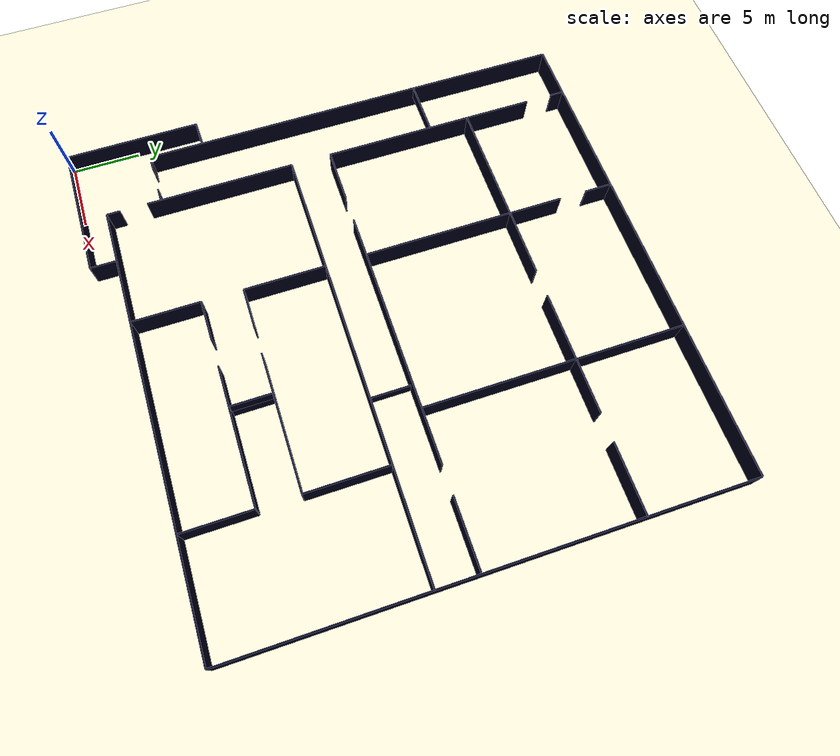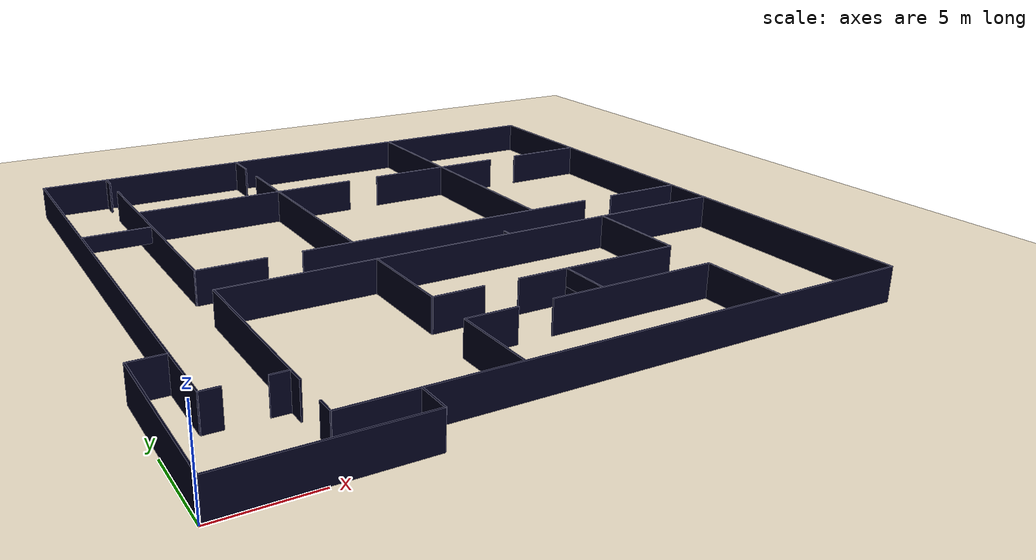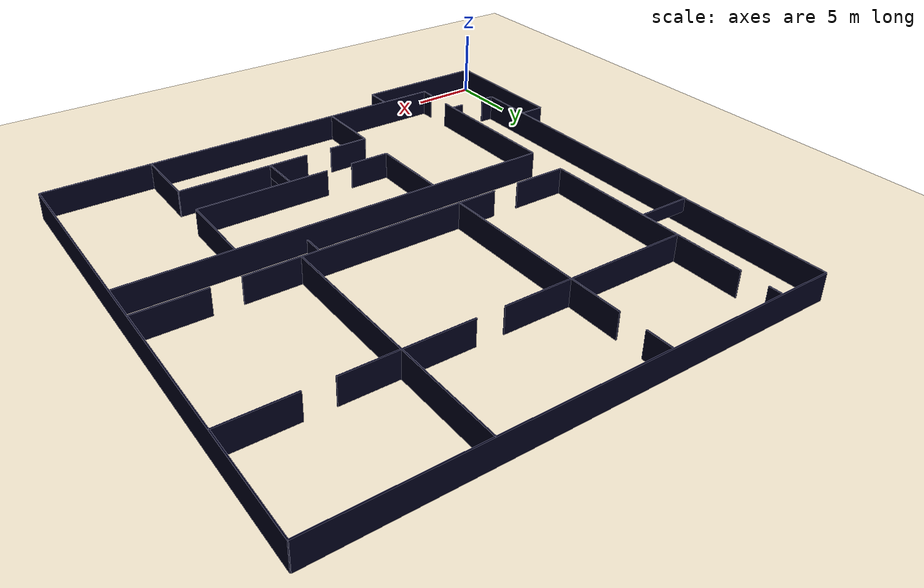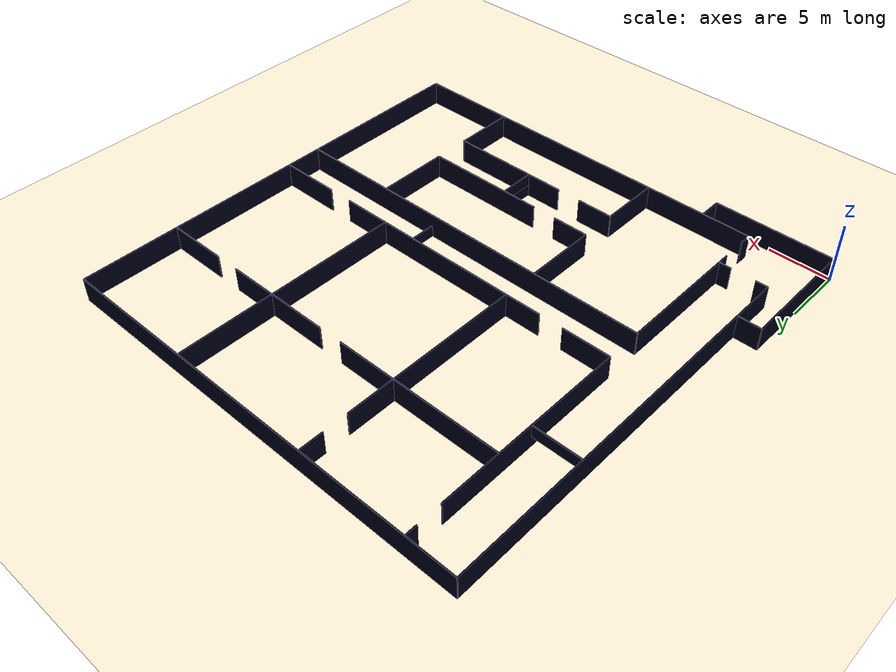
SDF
<?xml version="1.0" ?>
<!-- |    This document was autogenerated by xacro from mast_room.world.xacro          | -->
<!-- |    EDITING THIS FILE BY HAND IS NOT RECOMMENDED                                 | -->
<!-- edit the .xacro file, NOT the .world file
    run
    rosrun xacro xacro thisfile.world..xacro > thisfile.world
    to create the world file -->
<sdf version="1.4">
  <world name="MAST demo room">
    <scene>
      <ambient>0.5 0.5 0.5 1</ambient>
      <background>0.5 0.5 0.5 1</background>
      <shadows>false</shadows>
    </scene>
    <light name="directional_light_1" type="directional">
      <pose>0 20 20 0.1 0.1 0</pose>
      <diffuse>1 1 1 1</diffuse>
      <specular>1 1 1 1</specular>
      <attenuation>
        <range>300</range>
      </attenuation>
      <direction>0.1 0.1 -1</direction>
      <cast_shadows>false</cast_shadows>
    </light>
    <model name="full_wall0">
      <static>true</static>
      <link name="full_wall0_link">
        <pose>0.1 5.05 1.0 0 0 0</pose>
        <collision name="collision">
          <geometry>
            <box>
              <size>0.1 9.9 2.0</size>
            </box>
          </geometry>
        </collision>
        <visual name="visual">
          <cast_shadows>true</cast_shadows>
          <geometry>
            <box>
              <size>0.1 9.9 2.0</size>
            </box>
          </geometry>
          <material>
            <ambient>0.0 0.0 0.1 1.0</ambient>
          </material>
        </visual>
      </link>
    </model>
    <model name="full_wall1">
      <static>true</static>
      <link name="full_wall1_link">
        <pose>1.05 10.0 1.0 0 0 0</pose>
        <collision name="collision">
          <geometry>
            <box>
              <size>1.9 0.1 2.0</size>
            </box>
          </geometry>
        </collision>
        <visual name="visual">
          <cast_shadows>true</cast_shadows>
          <geometry>
            <box>
              <size>1.9 0.1 2.0</size>
            </box>
          </geometry>
          <material>
            <ambient>0.0 0.0 0.1 1.0</ambient>
          </material>
        </visual>
      </link>
    </model>
    <model name="full_wall2">
      <static>true</static>
      <link name="full_wall2_link">
        <pose>5.05 0.1 1.0 0 0 0</pose>
        <collision name="collision">
          <geometry>
            <box>
              <size>9.9 0.1 2.0</size>
            </box>
          </geometry>
        </collision>
        <visual name="visual">
          <cast_shadows>true</cast_shadows>
          <geometry>
            <box>
              <size>9.9 0.1 2.0</size>
            </box>
          </geometry>
          <material>
            <ambient>0.0 0.0 0.1 1.0</ambient>
          </material>
        </visual>
      </link>
    </model>
    <model name="full_wall3">
      <static>true</static>
      <link name="full_wall3_link">
        <pose>10.0 1.05 1.0 0 0 0</pose>
        <collision name="collision">
          <geometry>
            <box>
              <size>0.1 1.9 2.0</size>
            </box>
          </geometry>
        </collision>
        <visual name="visual">
          <cast_shadows>true</cast_shadows>
          <geometry>
            <box>
              <size>0.1 1.9 2.0</size>
            </box>
          </geometry>
          <material>
            <ambient>0.0 0.0 0.1 1.0</ambient>
          </material>
        </visual>
      </link>
    </model>
    <model name="full_wall4">
      <static>true</static>
      <link name="full_wall4_link">
        <pose>22.0 2.0 1.0 0 0 0</pose>
        <collision name="collision">
          <geometry>
            <box>
              <size>32.0 0.1 2.0</size>
            </box>
          </geometry>
        </collision>
        <visual name="visual">
          <cast_shadows>true</cast_shadows>
          <geometry>
            <box>
              <size>32.0 0.1 2.0</size>
            </box>
          </geometry>
          <material>
            <ambient>0.0 0.0 0.1 1.0</ambient>
          </material>
        </visual>
      </link>
    </model>
    <model name="full_wall5">
      <static>true</static>
      <link name="full_wall5_link">
        <pose>6.0 2.5 1.0 0 0 0</pose>
        <collision name="collision">
          <geometry>
            <box>
              <size>0.1 1.0 2.0</size>
            </box>
          </geometry>
        </collision>
        <visual name="visual">
          <cast_shadows>true</cast_shadows>
          <geometry>
            <box>
              <size>0.1 1.0 2.0</size>
            </box>
          </geometry>
          <material>
            <ambient>0.0 0.0 0.1 1.0</ambient>
          </material>
        </visual>
      </link>
    </model>
    <model name="full_wall6">
      <static>true</static>
      <link name="full_wall6_link">
        <pose>15.0 4.5 1.0 0 0 0</pose>
        <collision name="collision">
          <geometry>
            <box>
              <size>0.1 5.0 2.0</size>
            </box>
          </geometry>
        </collision>
        <visual name="visual">
          <cast_shadows>true</cast_shadows>
          <geometry>
            <box>
              <size>0.1 5.0 2.0</size>
            </box>
          </geometry>
          <material>
            <ambient>0.0 0.0 0.1 1.0</ambient>
          </material>
        </visual>
      </link>
    </model>
    <model name="full_wall7">
      <static>true</static>
      <link name="full_wall7_link">
        <pose>30.0 4.5 1.0 0 0 0</pose>
        <collision name="collision">
          <geometry>
            <box>
              <size>0.1 5.0 2.0</size>
            </box>
          </geometry>
        </collision>
        <visual name="visual">
          <cast_shadows>true</cast_shadows>
          <geometry>
            <box>
              <size>0.1 5.0 2.0</size>
            </box>
          </geometry>
          <material>
            <ambient>0.0 0.0 0.1 1.0</ambient>
          </material>
        </visual>
      </link>
    </model>
    <model name="full_wall8">
      <static>true</static>
      <link name="full_wall8_link">
        <pose>2.5 6.0 1.0 0 0 0</pose>
        <collision name="collision">
          <geometry>
            <box>
              <size>1.0 0.1 2.0</size>
            </box>
          </geometry>
        </collision>
        <visual name="visual">
          <cast_shadows>true</cast_shadows>
          <geometry>
            <box>
              <size>1.0 0.1 2.0</size>
            </box>
          </geometry>
          <material>
            <ambient>0.0 0.0 0.1 1.0</ambient>
          </material>
        </visual>
      </link>
    </model>
    <model name="full_wall9">
      <static>true</static>
      <link name="full_wall9_link">
        <pose>5.5 6.0 1.0 0 0 0</pose>
        <collision name="collision">
          <geometry>
            <box>
              <size>1.0 0.1 2.0</size>
            </box>
          </geometry>
        </collision>
        <visual name="visual">
          <cast_shadows>true</cast_shadows>
          <geometry>
            <box>
              <size>1.0 0.1 2.0</size>
            </box>
          </geometry>
          <material>
            <ambient>0.0 0.0 0.1 1.0</ambient>
          </material>
        </visual>
      </link>
    </model>
    <model name="full_wall10">
      <static>true</static>
      <link name="full_wall10_link">
        <pose>6.0 10.5 1.0 0 0 0</pose>
        <collision name="collision">
          <geometry>
            <box>
              <size>0.1 11.0 2.0</size>
            </box>
          </geometry>
        </collision>
        <visual name="visual">
          <cast_shadows>true</cast_shadows>
          <geometry>
            <box>
              <size>0.1 11.0 2.0</size>
            </box>
          </geometry>
          <material>
            <ambient>0.0 0.0 0.1 1.0</ambient>
          </material>
        </visual>
      </link>
    </model>
    <model name="full_wall11">
      <static>true</static>
      <link name="full_wall11_link">
        <pose>2.0 22.0 1.0 0 0 0</pose>
        <collision name="collision">
          <geometry>
            <box>
              <size>0.1 32.0 2.0</size>
            </box>
          </geometry>
        </collision>
        <visual name="visual">
          <cast_shadows>true</cast_shadows>
          <geometry>
            <box>
              <size>0.1 32.0 2.0</size>
            </box>
          </geometry>
          <material>
            <ambient>0.0 0.0 0.1 1.0</ambient>
          </material>
        </visual>
      </link>
    </model>
    <model name="full_wall12">
      <static>true</static>
      <link name="full_wall12_link">
        <pose>22.0 16.0 1.0 0 0 0</pose>
        <collision name="collision">
          <geometry>
            <box>
              <size>32.0 0.1 2.0</size>
            </box>
          </geometry>
        </collision>
        <visual name="visual">
          <cast_shadows>true</cast_shadows>
          <geometry>
            <box>
              <size>32.0 0.1 2.0</size>
            </box>
          </geometry>
          <material>
            <ambient>0.0 0.0 0.1 1.0</ambient>
          </material>
        </visual>
      </link>
    </model>
    <model name="full_wall13">
      <static>true</static>
      <link name="full_wall13_link">
        <pose>16.5 7.0 1.0 0 0 0</pose>
        <collision name="collision">
          <geometry>
            <box>
              <size>3.0 0.1 2.0</size>
            </box>
          </geometry>
        </collision>
        <visual name="visual">
          <cast_shadows>true</cast_shadows>
          <geometry>
            <box>
              <size>3.0 0.1 2.0</size>
            </box>
          </geometry>
          <material>
            <ambient>0.0 0.0 0.1 1.0</ambient>
          </material>
        </visual>
      </link>
    </model>
    <model name="full_wall14">
      <static>true</static>
      <link name="full_wall14_link">
        <pose>25.0 7.0 1.0 0 0 0</pose>
        <collision name="collision">
          <geometry>
            <box>
              <size>10.0 0.1 2.0</size>
            </box>
          </geometry>
        </collision>
        <visual name="visual">
          <cast_shadows>true</cast_shadows>
          <geometry>
            <box>
              <size>10.0 0.1 2.0</size>
            </box>
          </geometry>
          <material>
            <ambient>0.0 0.0 0.1 1.0</ambient>
          </material>
        </visual>
      </link>
    </model>
    <model name="full_wall15">
      <static>true</static>
      <link name="full_wall15_link">
        <pose>15.0 13.0 1.0 0 0 0</pose>
        <collision name="collision">
          <geometry>
            <box>
              <size>0.1 6.0 2.0</size>
            </box>
          </geometry>
        </collision>
        <visual name="visual">
          <cast_shadows>true</cast_shadows>
          <geometry>
            <box>
              <size>0.1 6.0 2.0</size>
            </box>
          </geometry>
          <material>
            <ambient>0.0 0.0 0.1 1.0</ambient>
          </material>
        </visual>
      </link>
    </model>
    <model name="full_wall16">
      <static>true</static>
      <link name="full_wall16_link">
        <pose>30.0 13.0 1.0 0 0 0</pose>
        <collision name="collision">
          <geometry>
            <box>
              <size>0.1 6.0 2.0</size>
            </box>
          </geometry>
        </collision>
        <visual name="visual">
          <cast_shadows>true</cast_shadows>
          <geometry>
            <box>
              <size>0.1 6.0 2.0</size>
            </box>
          </geometry>
          <material>
            <ambient>0.0 0.0 0.1 1.0</ambient>
          </material>
        </visual>
      </link>
    </model>
    <model name="full_wall17">
      <static>true</static>
      <link name="full_wall17_link">
        <pose>15.0 13.0 1.0 0 0 0</pose>
        <collision name="collision">
          <geometry>
            <box>
              <size>0.1 6.0 2.0</size>
            </box>
          </geometry>
        </collision>
        <visual name="visual">
          <cast_shadows>true</cast_shadows>
          <geometry>
            <box>
              <size>0.1 6.0 2.0</size>
            </box>
          </geometry>
          <material>
            <ambient>0.0 0.0 0.1 1.0</ambient>
          </material>
        </visual>
      </link>
    </model>
    <model name="full_wall18">
      <static>true</static>
      <link name="full_wall18_link">
        <pose>30.0 13.0 1.0 0 0 0</pose>
        <collision name="collision">
          <geometry>
            <box>
              <size>0.1 6.0 2.0</size>
            </box>
          </geometry>
        </collision>
        <visual name="visual">
          <cast_shadows>true</cast_shadows>
          <geometry>
            <box>
              <size>0.1 6.0 2.0</size>
            </box>
          </geometry>
          <material>
            <ambient>0.0 0.0 0.1 1.0</ambient>
          </material>
        </visual>
      </link>
    </model>
    <model name="full_wall19">
      <static>true</static>
      <link name="full_wall19_link">
        <pose>16.5 10.0 1.0 0 0 0</pose>
        <collision name="collision">
          <geometry>
            <box>
              <size>3.0 0.1 2.0</size>
            </box>
          </geometry>
        </collision>
        <visual name="visual">
          <cast_shadows>true</cast_shadows>
          <geometry>
            <box>
              <size>3.0 0.1 2.0</size>
            </box>
          </geometry>
          <material>
            <ambient>0.0 0.0 0.1 1.0</ambient>
          </material>
        </visual>
      </link>
    </model>
    <model name="full_wall20">
      <static>true</static>
      <link name="full_wall20_link">
        <pose>25.0 10.0 1.0 0 0 0</pose>
        <collision name="collision">
          <geometry>
            <box>
              <size>10.0 0.1 2.0</size>
            </box>
          </geometry>
        </collision>
        <visual name="visual">
          <cast_shadows>true</cast_shadows>
          <geometry>
            <box>
              <size>10.0 0.1 2.0</size>
            </box>
          </geometry>
          <material>
            <ambient>0.0 0.0 0.1 1.0</ambient>
          </material>
        </visual>
      </link>
    </model>
    <model name="full_wall21">
      <static>true</static>
      <link name="full_wall21_link">
        <pose>8.0 19.0 1.0 0 0 0</pose>
        <collision name="collision">
          <geometry>
            <box>
              <size>4.0 0.1 2.0</size>
            </box>
          </geometry>
        </collision>
        <visual name="visual">
          <cast_shadows>true</cast_shadows>
          <geometry>
            <box>
              <size>4.0 0.1 2.0</size>
            </box>
          </geometry>
          <material>
            <ambient>0.0 0.0 0.1 1.0</ambient>
          </material>
        </visual>
      </link>
    </model>
    <model name="full_wall22">
      <static>true</static>
      <link name="full_wall22_link">
        <pose>21.5 19.0 1.0 0 0 0</pose>
        <collision name="collision">
          <geometry>
            <box>
              <size>19.0 0.1 2.0</size>
            </box>
          </geometry>
        </collision>
        <visual name="visual">
          <cast_shadows>true</cast_shadows>
          <geometry>
            <box>
              <size>19.0 0.1 2.0</size>
            </box>
          </geometry>
          <material>
            <ambient>0.0 0.0 0.1 1.0</ambient>
          </material>
        </visual>
      </link>
    </model>
    <model name="full_wall23">
      <static>true</static>
      <link name="full_wall23_link">
        <pose>35.5 19.0 1.0 0 0 0</pose>
        <collision name="collision">
          <geometry>
            <box>
              <size>5.0 0.1 2.0</size>
            </box>
          </geometry>
        </collision>
        <visual name="visual">
          <cast_shadows>true</cast_shadows>
          <geometry>
            <box>
              <size>5.0 0.1 2.0</size>
            </box>
          </geometry>
          <material>
            <ambient>0.0 0.0 0.1 1.0</ambient>
          </material>
        </visual>
      </link>
    </model>
    <model name="full_wall24">
      <static>true</static>
      <link name="full_wall24_link">
        <pose>15.0 26.5 1.0 0 0 0</pose>
        <collision name="collision">
          <geometry>
            <box>
              <size>0.1 15.0 2.0</size>
            </box>
          </geometry>
        </collision>
        <visual name="visual">
          <cast_shadows>true</cast_shadows>
          <geometry>
            <box>
              <size>0.1 15.0 2.0</size>
            </box>
          </geometry>
          <material>
            <ambient>0.0 0.0 0.1 1.0</ambient>
          </material>
        </visual>
      </link>
    </model>
    <model name="full_wall25">
      <static>true</static>
      <link name="full_wall25_link">
        <pose>27.0 28.5 1.0 0 0 0</pose>
        <collision name="collision">
          <geometry>
            <box>
              <size>0.1 19.0 2.0</size>
            </box>
          </geometry>
        </collision>
        <visual name="visual">
          <cast_shadows>true</cast_shadows>
          <geometry>
            <box>
              <size>0.1 19.0 2.0</size>
            </box>
          </geometry>
          <material>
            <ambient>0.0 0.0 0.1 1.0</ambient>
          </material>
        </visual>
      </link>
    </model>
    <model name="full_wall26">
      <static>true</static>
      <link name="full_wall26_link">
        <pose>13.0 30.0 1.0 0 0 0</pose>
        <collision name="collision">
          <geometry>
            <box>
              <size>14.0 0.1 2.0</size>
            </box>
          </geometry>
        </collision>
        <visual name="visual">
          <cast_shadows>true</cast_shadows>
          <geometry>
            <box>
              <size>14.0 0.1 2.0</size>
            </box>
          </geometry>
          <material>
            <ambient>0.0 0.0 0.1 1.0</ambient>
          </material>
        </visual>
      </link>
    </model>
    <model name="full_wall27">
      <static>true</static>
      <link name="full_wall27_link">
        <pose>26.5 30.0 1.0 0 0 0</pose>
        <collision name="collision">
          <geometry>
            <box>
              <size>9.0 0.1 2.0</size>
            </box>
          </geometry>
        </collision>
        <visual name="visual">
          <cast_shadows>true</cast_shadows>
          <geometry>
            <box>
              <size>9.0 0.1 2.0</size>
            </box>
          </geometry>
          <material>
            <ambient>0.0 0.0 0.1 1.0</ambient>
          </material>
        </visual>
      </link>
    </model>
    <model name="full_wall28">
      <static>true</static>
      <link name="full_wall28_link">
        <pose>35.5 30.0 1.0 0 0 0</pose>
        <collision name="collision">
          <geometry>
            <box>
              <size>5.0 0.1 2.0</size>
            </box>
          </geometry>
        </collision>
        <visual name="visual">
          <cast_shadows>true</cast_shadows>
          <geometry>
            <box>
              <size>5.0 0.1 2.0</size>
            </box>
          </geometry>
          <material>
            <ambient>0.0 0.0 0.1 1.0</ambient>
          </material>
        </visual>
      </link>
    </model>
    <model name="full_wall29">
      <static>true</static>
      <link name="full_wall29_link">
        <pose>6.0 37.5 1.0 0 0 0</pose>
        <collision name="collision">
          <geometry>
            <box>
              <size>0.1 1.0 2.0</size>
            </box>
          </geometry>
        </collision>
        <visual name="visual">
          <cast_shadows>true</cast_shadows>
          <geometry>
            <box>
              <size>0.1 1.0 2.0</size>
            </box>
          </geometry>
          <material>
            <ambient>0.0 0.0 0.1 1.0</ambient>
          </material>
        </visual>
      </link>
    </model>
    <model name="full_wall30">
      <static>true</static>
      <link name="full_wall30_link">
        <pose>15.0 37.0 1.0 0 0 0</pose>
        <collision name="collision">
          <geometry>
            <box>
              <size>0.1 2.0 2.0</size>
            </box>
          </geometry>
        </collision>
        <visual name="visual">
          <cast_shadows>true</cast_shadows>
          <geometry>
            <box>
              <size>0.1 2.0 2.0</size>
            </box>
          </geometry>
          <material>
            <ambient>0.0 0.0 0.1 1.0</ambient>
          </material>
        </visual>
      </link>
    </model>
    <model name="full_wall31">
      <static>true</static>
      <link name="full_wall31_link">
        <pose>20.0 38.0 1.0 0 0 0</pose>
        <collision name="collision">
          <geometry>
            <box>
              <size>36.0 0.1 2.0</size>
            </box>
          </geometry>
        </collision>
        <visual name="visual">
          <cast_shadows>true</cast_shadows>
          <geometry>
            <box>
              <size>36.0 0.1 2.0</size>
            </box>
          </geometry>
          <material>
            <ambient>0.0 0.0 0.1 1.0</ambient>
          </material>
        </visual>
      </link>
    </model>
    <model name="full_wall32">
      <static>true</static>
      <link name="full_wall32_link">
        <pose>38.0 20.0 1.0 0 0 0</pose>
        <collision name="collision">
          <geometry>
            <box>
              <size>0.1 36.0 2.0</size>
            </box>
          </geometry>
        </collision>
        <visual name="visual">
          <cast_shadows>true</cast_shadows>
          <geometry>
            <box>
              <size>0.1 36.0 2.0</size>
            </box>
          </geometry>
          <material>
            <ambient>0.0 0.0 0.1 1.0</ambient>
          </material>
        </visual>
      </link>
    </model>
    <model name="full_wall33">
      <static>true</static>
      <link name="full_wall33_link">
        <pose>6.0 27.0 1.0 0 0 0</pose>
        <collision name="collision">
          <geometry>
            <box>
              <size>0.1 16.0 2.0</size>
            </box>
          </geometry>
        </collision>
        <visual name="visual">
          <cast_shadows>true</cast_shadows>
          <geometry>
            <box>
              <size>0.1 16.0 2.0</size>
            </box>
          </geometry>
          <material>
            <ambient>0.0 0.0 0.1 1.0</ambient>
          </material>
        </visual>
      </link>
    </model>
    <model name="uav_wall0">
      <static>true</static>
      <link name="uav_wall0_link">
        <pose>4.0 27.0 1.5 0 0 0</pose>
        <collision name="collision">
          <geometry>
            <box>
              <size>4.0 0.1 1.0</size>
            </box>
          </geometry>
        </collision>
        <visual name="visual">
          <cast_shadows>true</cast_shadows>
          <geometry>
            <box>
              <size>4.0 0.1 1.0</size>
            </box>
          </geometry>
          <material>
            <ambient>0.0 0.0 0.1 1.0</ambient>
          </material>
        </visual>
      </link>
    </model>
    <model name="uav_wall1">
      <static>true</static>
      <link name="uav_wall1_link">
        <pose>23.0 8.5 1.5 0 0 0</pose>
        <collision name="collision">
          <geometry>
            <box>
              <size>0.1 3.0 1.0</size>
            </box>
          </geometry>
        </collision>
        <visual name="visual">
          <cast_shadows>true</cast_shadows>
          <geometry>
            <box>
              <size>0.1 3.0 1.0</size>
            </box>
          </geometry>
          <material>
            <ambient>0.0 0.0 0.1 1.0</ambient>
          </material>
        </visual>
      </link>
    </model>
    <model name="ugv_wall0">
      <static>true</static>
      <link name="ugv_wall0_link">
        <pose>23.0 8.5 0.5 0 0 0</pose>
        <collision name="collision">
          <geometry>
            <box>
              <size>0.1 3.0 1.0</size>
            </box>
          </geometry>
        </collision>
        <visual name="visual">
          <cast_shadows>true</cast_shadows>
          <geometry>
            <box>
              <size>0.1 3.0 1.0</size>
            </box>
          </geometry>
          <material>
            <ambient>0.0 0.0 0.1 1.0</ambient>
          </material>
        </visual>
      </link>
    </model>
    <model name="ugv_wall1">
      <static>true</static>
      <link name="ugv_wall1_link">
        <pose>25.0 17.5 0.5 0 0 0</pose>
        <collision name="collision">
          <geometry>
            <box>
              <size>0.1 3.0 1.0</size>
            </box>
          </geometry>
        </collision>
        <visual name="visual">
          <cast_shadows>true</cast_shadows>
          <geometry>
            <box>
              <size>0.1 3.0 1.0</size>
            </box>
          </geometry>
          <material>
            <ambient>0.0 0.0 0.1 1.0</ambient>
          </material>
        </visual>
      </link>
    </model>
    <!-- Ground plane -->
    <model name="ground">
      <pose>20.0 20.0 0 0 0 0</pose>
      <static>true</static>
      <link name="ground_link">
        <collision name="collision">
          <geometry>
            <plane>
              <normal>0 0 1</normal>
              <size>10 15</size>
            </plane>
          </geometry>
          <surface>
            <friction>
              <ode>
                <mu>100</mu>
                <mu2>50</mu2>
              </ode>
            </friction>
          </surface>
        </collision>
        <visual name="visual">
          <cast_shadows>false</cast_shadows>
          <geometry>
            <plane>
              <normal>0 0 1</normal>
              <size>40.0 40.0</size>
            </plane>
          </geometry>
          <material>
            <ambient>0.97 0.92 0.82 1.0</ambient>
            <diffuse>0.97 0.92 0.82 1.0</diffuse>
          </material>
        </visual>
      </link>
    </model>
  </world>
</sdf>
